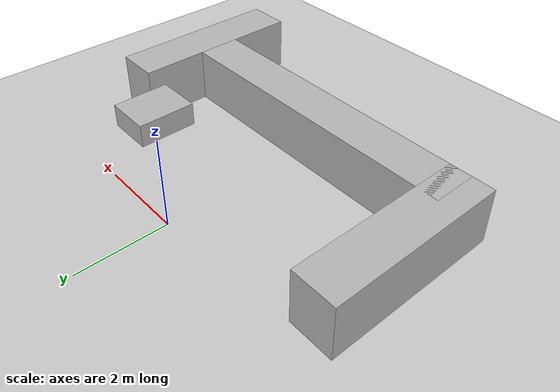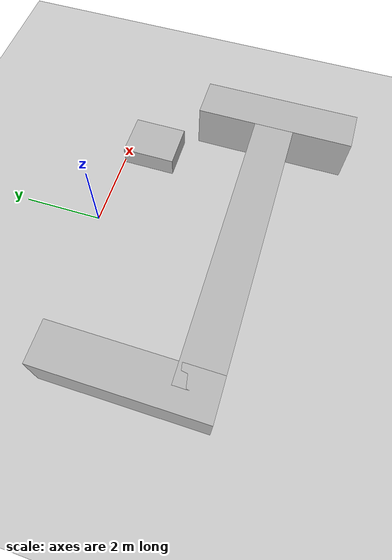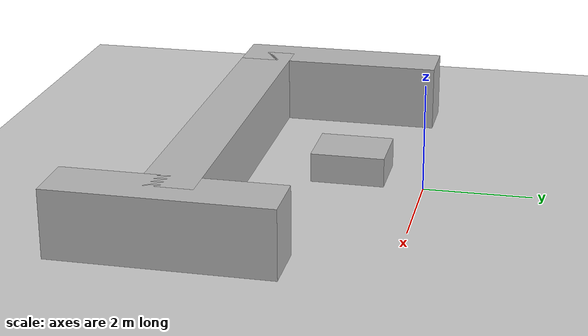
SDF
<sdf version="1.6">
 <world name="default">
  <include><uri>model://ground_plane</uri></include>
  <include><uri>model://sun</uri></include>
  <scene><shadows>false</shadows></scene>
  <physics type="ode">
   <real_time_update_rate>1000.0</real_time_update_rate>
   <max_step_size>0.001</max_step_size>
   <real_time_factor>1</real_time_factor>
  </physics>
  <model name="wall_south">
   <static>true</static>
   <link name="link">
    <collision name="collision"><geometry><box><size>7.5 1 1.25</size></box></geometry></collision>
    <visual name="visual"><geometry><box><size>7.5 1 1.25</size></box></geometry></visual>
    <pose>0 -3.75 0.625 0 0 0</pose>
   </link>
  </model>
  <model name="wall_west">
   <static>true</static>
   <link name="link">
    <collision name="collision"><geometry><box><size>1 4 1.25</size></box></geometry></collision>
    <visual name="visual"><geometry><box><size>1 4 1.25</size></box></geometry></visual>
    <pose>-3.75 -2.25 0.625 0 0 0</pose>
   </link>
  </model>
  <model name="wall_east">
   <static>true</static>
   <link name="link">
    <collision name="collision"><geometry><box><size>1 4 1.25</size></box></geometry></collision>
    <visual name="visual"><geometry><box><size>1 4 1.25</size></box></geometry></visual>
    <pose>3.75 -3.75 0.625 0 0 0</pose>
   </link>
  </model>
  <model name="wall_center">
   <static>true</static>
   <link name="link">
    <collision name="collision"><geometry><box><size>1 1.25 0.5</size></box></geometry></collision>
    <visual name="visual"><geometry><box><size>1 1.25 0.5</size></box></geometry></visual>
    <pose>1.8 -1 1.2 0 0 0</pose>
   </link>
  </model>
 </world>
</sdf>
